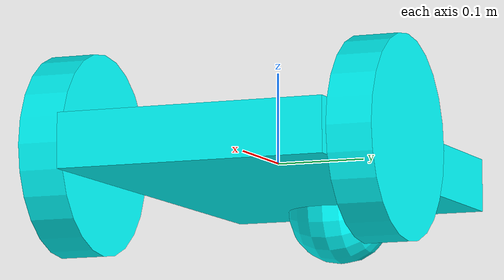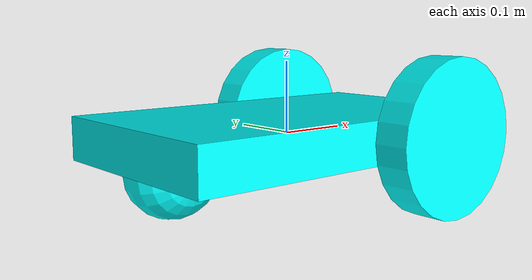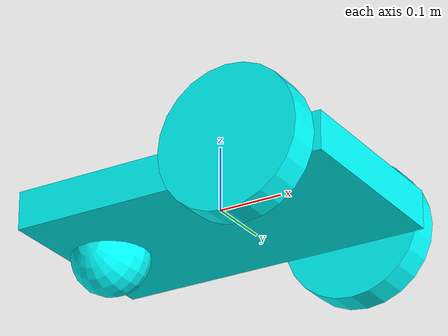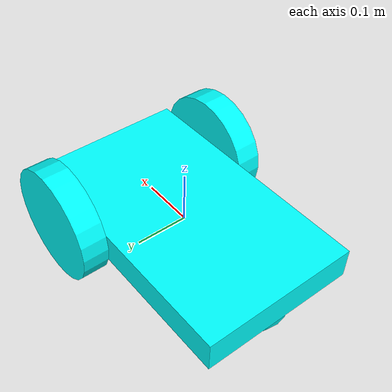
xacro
<?xml version="1.0"?>
<robot name="Didff_drive" xmlns:xacro="http://ros.org/wiki/xacro">

  <link name="base_footprint">
  </link>

  <link name="base_link">
    <visual>
      <origin xyz="0 0 0" rpy="0 0 0"/>
      <geometry>
        <box size="0.5 0.3 0.06"/>
      </geometry>
      <material name="Cyan">
        <color rgba="0 1.0 1.0 1.0"/>
      </material>
    </visual>
    <collision>
      <origin xyz="0 0 0" rpy="0 0 0"/>
      <geometry>
        <box size="0.5 0.3 0.06"/>
      </geometry>
    </collision>
    <inertial>
      <origin xyz="0 0 0" rpy="0 0 0"/>
      <mass value="10"/>
      <inertia ixx="1.0"  ixy="0"  ixz="0" iyy="1.0" iyz="0" izz="1.0" />
    </inertial>
  </link>

  <link name="right_wheel">
    <visual>
      <origin rpy="1.57075 0 0" xyz="0 0 0"/>
      <geometry>
        <cylinder length="0.05" radius="0.11"/>
      </geometry>
      <material name="Cyan">
        <color rgba="0 1.0 1.0 1.0"/>
      </material>
    </visual>
    <collision>
      <origin rpy="1.57075 0 0" xyz="0 0 0"/>
      <geometry>
        <cylinder length="0.05" radius="0.11"/>
      </geometry>
    </collision>
    <inertial>
      <origin rpy="1.57075 0 0" xyz="0 0 0"/>
      <mass value="10"/>
      <inertia ixx="1.0"  ixy="0"  ixz="0" iyy="1.0" iyz="0" izz="1.0" />
    </inertial>
  </link>

  <link name="left_wheel">
    <visual>
      <origin rpy="1.57075 0 0" xyz="0 0 0"/>
      <geometry>
        <cylinder length="0.05" radius="0.11"/>
      </geometry>
      <material name="Cyan">
        <color rgba="0 1.0 1.0 1.0"/>
      </material>
    </visual>
    <collision>
      <origin rpy="1.57075 0 0" xyz="0 0 0"/>
      <geometry>
        <cylinder length="0.05" radius="0.11"/>
      </geometry>
    </collision>
    <inertial>
      <origin rpy="1.57075 0 0" xyz="0 0 0"/>
      <mass value="10"/>
      <inertia ixx="1.0"  ixy="0"  ixz="0" iyy="1.0" iyz="0" izz="1.0" />
    </inertial>
  </link>

  <link name="castor_wheel">
    <visual>
      <origin rpy="1.57075 0 0" xyz="0 0 0"/>
      <geometry>
        <sphere radius="0.06"/>
      </geometry>
      <material name="Cyan">
        <color rgba="0 1.0 1.0 1.0"/>
      </material>
    </visual>
    <collision>
      <origin rpy="1.57075 0 0" xyz="0 0 0"/>
      <geometry>
        <sphere radius="0.06"/>
      </geometry>
    </collision>
    <inertial>
      <origin rpy="1.57075 0 0" xyz="0 0 0"/>
      <mass value="10"/>
      <inertia ixx="1.0"  ixy="0"  ixz="0" iyy="1.0" iyz="0" izz="1.0" />
    </inertial>
  </link>

<!-- Joint -->

  <joint name="footprint_to_base" type="fixed">
    <origin rpy="0 0 0" xyz="0 0 0"/>
    <parent link="base_footprint"/>
    <child link="base_link"/>
  </joint>

  <joint name="base_to_right_wheel" type="continuous">
    <origin rpy="0 0 0" xyz="0.13 0.175 0"/>
    <parent link="base_link"/>
    <child link="right_wheel"/>
    <axis xyz="0 1 0"/>
  </joint>

  <joint name="base_to_left_wheel" type="continuous">
    <origin rpy="0 0 0" xyz="0.13 -0.175 0"/>
    <parent link="base_link"/>
    <child link="left_wheel"/>
    <axis xyz="0 1 0"/>
  </joint>

  <joint name="base_to_castor" type="continuous">
    <origin rpy="0 0 0" xyz="-0.19 0 -0.03"/>
    <parent link="base_link"/>
    <child link="castor_wheel"/>
    <axis xyz="0 1 0"/>
  </joint>

<!-- Transmission -->
  <transmission name="left_wheel_transmission">
    <type> transmission_interface/SimpleTransmission </type>
    <joint name="base_to_left_wheel">
      <hardwareInterface>VelocityJointInterface</hardwareInterface>
    </joint>
    <actuator name="left_wheel_actuator">
      <mechanicalReduction>7</mechanicalReduction>
    </actuator>
  </transmission>

  <transmission name="right_wheel_transmission">
    <type> transmission_interface/SimpleTransmission </type>
    <joint name="base_to_right_wheel">
      <hardwareInterface>VelocityJointInterface</hardwareInterface>
    </joint>
    <actuator name="right_wheel_actuator">
      <mechanicalReduction>7</mechanicalReduction>
    </actuator>
  </transmission>

<!-- Gazebo plugin for ROS Control -->
  <gazebo>
    <plugin name="gazebo_ros_control" filename="libgazebo_ros_control.so">
      <robotNamespace>/</robotNamespace>
    </plugin>
  </gazebo>

</robot>
